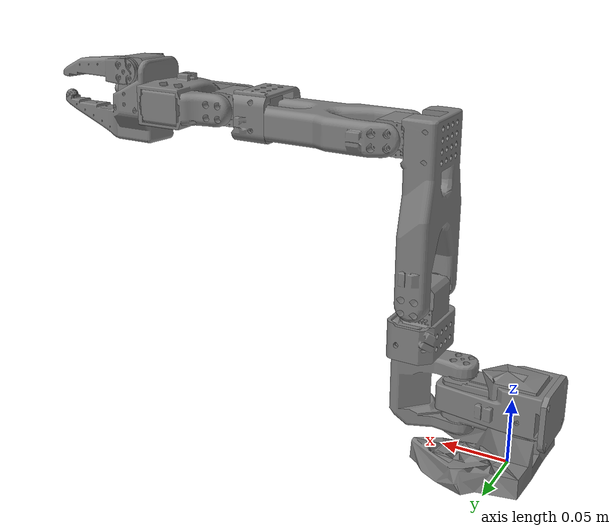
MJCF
<mujoco model="structural_body">
  <compiler angle="radian"/>

  <asset>
    <mesh name="base_motor_holder_so101_v1" file="assets/base_motor_holder_so101_v1.stl"/>
    <mesh name="base_so101_v2" file="assets/base_so101_v2.stl"/>
    <mesh name="sts3215_03a_v1" file="assets/sts3215_03a_v1.stl"/>
    <mesh name="waveshare_mounting_plate_so101_v2" file="assets/waveshare_mounting_plate_so101_v2.stl"/>
    <mesh name="motor_holder_so101_base_v1" file="assets/motor_holder_so101_base_v1.stl"/>
    <mesh name="rotation_pitch_so101_v1" file="assets/rotation_pitch_so101_v1.stl"/>
    <mesh name="upper_arm_so101_v1" file="assets/upper_arm_so101_v1.stl"/>
    <mesh name="motor_holder_so101_wrist_v1" file="assets/motor_holder_so101_wrist_v1.stl"/>
    <mesh name="under_arm_so101_v1" file="assets/under_arm_so101_v1.stl"/>
    <mesh name="sts3215_03a_no_horn_v1" file="assets/sts3215_03a_no_horn_v1.stl"/>
    <mesh name="wrist_roll_pitch_so101_v2" file="assets/wrist_roll_pitch_so101_v2.stl"/>
    <mesh name="wrist_roll_follower_so101_v1" file="assets/wrist_roll_follower_so101_v1.stl"/>
    <mesh name="moving_jaw_so101_v1" file="assets/moving_jaw_so101_v1.stl"/>
  </asset>

  <worldbody>
    <body name="body_0000">
      <inertial pos="0.0137179 -5.19711e-05 0.0334843" quat="0.420519 0.558762 0.57198 0.428704" mass="0.147" diaginertia="0.000136127 0.000131807 0.000113233"/>
      <geom pos="-0.00636471 -9.94414e-05 -0.0024" quat="0.499998 0.5 0.500002 0.5" type="mesh" mesh="base_motor_holder_so101_v1"/>
      <geom pos="-0.00636471 -8.97657e-09 -0.0024" quat="0.499998 0.5 0.500002 0.5" type="mesh" mesh="base_so101_v2"/>
      <geom pos="0.0263353 -8.97657e-09 0.0437" quat="1 0 0 0" type="mesh" mesh="sts3215_03a_v1"/>
      <geom pos="-0.0309827 -0.000199441 0.0474" quat="0.499998 0.5 0.500002 0.5" type="mesh" mesh="waveshare_mounting_plate_so101_v2"/>
      <site name="robot_base" pos="0 0 0"/>
      <body name="body_0001" pos="0.0388353 -8.97657e-09 0.0624" quat="1.76036e-12 1.32679e-06 -1 -1.32679e-06">
        <inertial pos="-0.0307604 -1.66727e-05 -0.0252713" quat="0.999865 0.00149563 0.0097084 0.0132043" mass="0.100006" diaginertia="8.37836e-05 8.10388e-05 2.39552e-05"/>
        <joint name="axis_0000" pos="0 0 0" axis="0 0 1" range="-1.91986 1.91986" actuatorfrcrange="-10 10"/>
        <geom pos="-0.0675992 -0.000177759 0.0158499" quat="0.499998 0.5 -0.5 0.500002" type="mesh" mesh="motor_holder_so101_base_v1"/>
        <geom pos="0.0122008 2.22413e-05 0.0464" quat="0.707105 -0.707108 0 0" type="mesh" mesh="rotation_pitch_so101_v1"/>
        <geom pos="-0.0303992 0.000422241 -0.0417" quat="0.499998 0.5 0.5 -0.500002" type="mesh" mesh="sts3215_03a_v1"/>
        <body name="body_0002" pos="-0.0303992 -0.0182778 -0.0542" quat="0.499998 -0.5 -0.5 -0.500002">
          <inertial pos="-0.0898471 -0.00838224 0.0184089" quat="0.453195 0.454063 0.541891 0.542951" mass="0.103" diaginertia="0.000150873 0.000142487 3.72451e-05"/>
          <joint name="axis_0001" pos="0 0 0" axis="0 0 1" range="-1.74533 1.74533" actuatorfrcrange="-10 10"/>
          <geom pos="-0.11257 -0.0155 0.0187" quat="9.38184e-07 -0.707105 0.707108 -9.38187e-07" type="mesh" mesh="sts3215_03a_v1"/>
          <geom pos="-0.065085 0.012 0.0182" quat="1.32679e-06 1 0 0" type="mesh" mesh="upper_arm_so101_v1"/>
          <body name="body_0003" pos="-0.11257 -0.028 0" quat="0.707105 0 0 0.707108">
            <inertial pos="-0.0980701 0.00324376 0.0182831" quat="0.510729 0.517006 0.487966 0.483477" mass="0.104" diaginertia="0.000160262 0.000145304 2.83125e-05"/>
            <joint name="axis_0002" pos="0 0 0" axis="0 0 1" range="-1.69 1.69" actuatorfrcrange="-10 10"/>
            <geom pos="-0.0648499 -0.032 0.018" quat="1.32679e-06 -1 0 0" type="mesh" mesh="motor_holder_so101_wrist_v1"/>
            <geom pos="-0.1224 0.0052 0.0187" quat="1.76034e-12 -1.32679e-06 1 -1.32679e-06" type="mesh" mesh="sts3215_03a_v1"/>
            <geom pos="-0.0648499 -0.032 0.0182" quat="1.32679e-06 1 0 0" type="mesh" mesh="under_arm_so101_v1"/>
            <body name="body_0004" pos="-0.1349 0.0052 0" quat="0.707105 0 0 -0.707108">
              <inertial pos="-0.000103312 -0.0386143 0.0281156" quat="0.967143 0.254226 0.00162226 -0.000146307" mass="0.079" diaginertia="3.68265e-05 2.74474e-05 1.89434e-05"/>
              <joint name="axis_0003" pos="0 0 0" axis="0 0 1" range="-1.65806 1.65806" actuatorfrcrange="-10 10"/>
              <geom pos="0 -0.0424 0.0306" quat="0.499998 0.5 0.5 -0.500002" type="mesh" mesh="sts3215_03a_no_horn_v1"/>
              <geom pos="0 -0.028 0.0181" quat="0.499998 -0.5 -0.5 -0.500002" type="mesh" mesh="wrist_roll_pitch_so101_v2"/>
              <body name="body_0005" pos="0 -0.0611 0.0181" quat="0.0172101 -0.0172081 0.706899 0.706896">
                <inertial pos="0.000213627 0.000245138 -0.025187" quat="0.600717 0.355993 0.35863 0.61951" mass="0.087" diaginertia="4.33735e-05 3.77229e-05 2.42839e-05"/>
                <joint name="axis_0004" pos="0 0 0" axis="0 0 1" range="-2.74385 2.84121" actuatorfrcrange="-10 10"/>
                <geom pos="0.0077 0.0001 -0.0234" quat="0.707105 -0.707108 0 0" type="mesh" mesh="sts3215_03a_v1"/>
                <geom pos="0 -0.000218214 0.000949706" quat="1.32679e-06 -1 0 0" type="mesh" mesh="wrist_roll_follower_so101_v1"/>
                <site name="body_0005_tip" pos="-0.0204274 0.000191575 -0.0561242"/>
                <site name="body_0005_grasp_point" pos="-0.0079 -0.000218121 -0.0981274"/>
                <site name="body_0005_grasp_center" pos="0.0041 0.00619396 -0.0405091"/>
                <site name="body_0005_contact_0" pos="-0.0204274 0.000191575 -0.0561242"/>
                <site name="body_0005_wrist" pos="0 0 0"/>
                <body name="body_0006" pos="-0.0079 -0.000218121 -0.0981274" quat="1.32679e-06 0 1 0">
                  <inertial pos="0 0 0" mass="1e-09" diaginertia="0 0 0"/>
                  <site name="body_0005_contact_1" pos="0 0 0"/>
                </body>
                <body name="body_0007" pos="0.0202 0.0188 -0.0234" quat="0.707105 0.707108 -1.85362e-08 1.85363e-08">
                  <inertial pos="-0.00157495 -0.0300244 0.0192755" quat="0.695265 0.717965 -0.0245618 -0.0230097" mass="0.012" diaginertia="6.63582e-06 5.29092e-06 1.86523e-06"/>
                  <joint name="axis_0006" pos="0 0 0" axis="0 0 1" range="-0.174533 1.74533" actuatorfrcrange="-10 10"/>
                  <geom pos="0 0 0.0189" quat="1 0 0 0" type="mesh" mesh="moving_jaw_so101_v1"/>
                  <site name="body_0005_contact_2" pos="-0.0021968 -0.035136 0.0188903"/>
                </body>
              </body>
            </body>
          </body>
        </body>
      </body>
    </body>
  </worldbody>

  <actuator>
    <general name="axis_0000_motor" joint="axis_0000" ctrllimited="true" ctrlrange="-10 10" forcelimited="true" forcerange="-10 10"/>
    <general name="axis_0001_motor" joint="axis_0001" ctrllimited="true" ctrlrange="-10 10" forcelimited="true" forcerange="-10 10"/>
    <general name="axis_0002_motor" joint="axis_0002" ctrllimited="true" ctrlrange="-10 10" forcelimited="true" forcerange="-10 10"/>
    <general name="axis_0003_motor" joint="axis_0003" ctrllimited="true" ctrlrange="-10 10" forcelimited="true" forcerange="-10 10"/>
    <general name="axis_0004_motor" joint="axis_0004" ctrllimited="true" ctrlrange="-10 10" forcelimited="true" forcerange="-10 10"/>
    <general name="axis_0006_motor" joint="axis_0006" ctrllimited="true" ctrlrange="-10 10" forcelimited="true" forcerange="-10 10"/>
  </actuator>
</mujoco>
